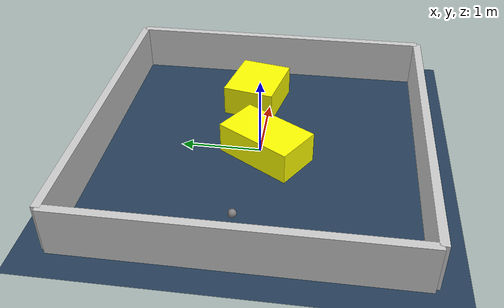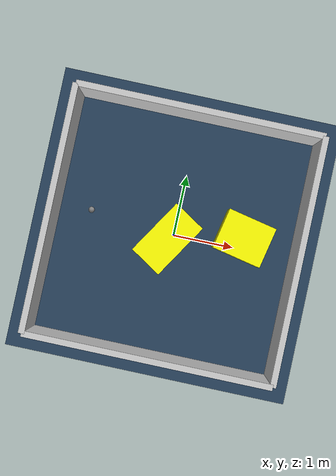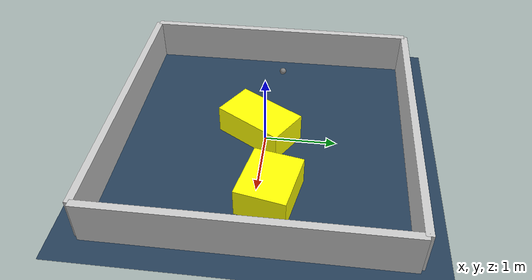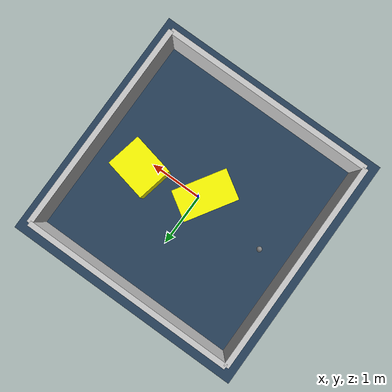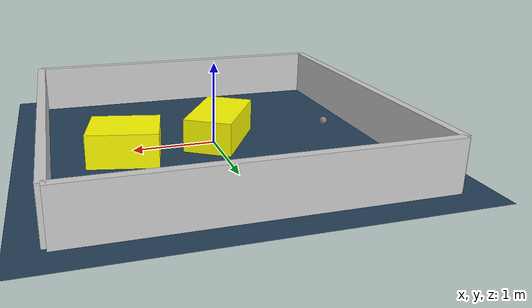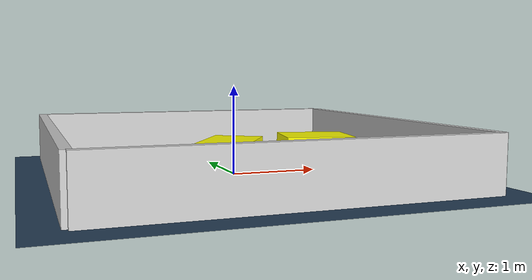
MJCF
<?xml version="1.0" ?>
<mujoco model="generated_environment">
  <option timestep="0.01" integrator="RK4" cone="elliptic"/>
  <default>
    <geom density="1"/>
  </default>
  <asset>
    <texture builtin="gradient" height="3072" rgb1="0.3 0.5 0.7" rgb2="0 0 0" type="skybox" width="512"/>
    <texture builtin="checker" height="300" mark="edge" markrgb="0.8 0.8 0.8" name="groundplane" rgb1="0.2 0.3 0.4" rgb2="0.1 0.2 0.3" type="2d" width="300"/>
    <material name="groundplane" reflectance="0.2" texrepeat="5 5" texture="groundplane" texuniform="true"/>
    <material name="robot" rgba="0.0 1.0 0.0 1"/>
  </asset>
  <worldbody>
    <light dir="0 0 -1" directional="true" pos="0 0 1.5"/>
    <geom condim="4" friction="1.0 0.005 0.001" material="groundplane" name="floor" size="0 0 0.05" type="plane"/>
    <body name="walls">
      <geom name="wall_1" condim="4" pos="-2.0 0.0 0.3" rgba="0.800000011920929 0.800000011920929 0.800000011920929 1.0" size="0.05 2.0 0.3" type="box"/>
      <geom name="wall_2" condim="4" pos="2.0 0.0 0.3" rgba="0.800000011920929 0.800000011920929 0.800000011920929 1.0" size="0.05 2.0 0.3" type="box"/>
      <geom name="wall_3" condim="4" pos="0.0 -2.0 0.3" rgba="0.800000011920929 0.800000011920929 0.800000011920929 1.0" size="2.0 0.05 0.3" type="box"/>
      <geom name="wall_4" condim="4" pos="0.0 2.0 0.3" rgba="0.800000011920929 0.800000011920929 0.800000011920929 1.0" size="2.0 0.05 0.3" type="box"/>
    </body>
    <body name="robot">
      <joint name="joint_x" type="slide" pos="0 0 0" axis="1 0 0"/>
      <joint name="joint_y" type="slide" pos="0 0 0" axis="0 1 0"/>
      <geom name="robot" type="sphere" pos="-1.4022592484781018 0.11908520778796694 0.2" size="0.05" mass="5." friction="1.0 0.005 0.0001" condim="4"/>
      <site name="sensor_ball"/>
    </body>
    <body name="obstacle_1_movable">
      <geom name="obstacle_1_movable" condim="4" pos="-0.087685547343056 -0.0858372296414871 0.2" euler="0 0 327.95635818961546" friction="1.0 0.005 0.001" rgba="1 1 0 1" size="0.2901256224761515 0.5100761928577715 0.2" type="box" mass="0.1"/>
      <joint type="free"/>
    </body>
    <body name="obstacle_2_movable">
      <geom name="obstacle_2_movable" condim="4" pos="1.1130897086935145 0.18613257925157223 0.2" euler="0 0 78.14065111181503" friction="1.0 0.005 0.001" rgba="1 1 0 1" size="0.33766840568509243 0.40573337660153996 0.2" type="box" mass="0.1"/>
      <joint type="free"/>
    </body>
  </worldbody>
  <actuator>
    <motor name="actuator_x" joint="joint_x" gear="1" ctrlrange="-1 1"/>
    <motor name="actuator_y" joint="joint_y" gear="1" ctrlrange="-1 1"/>
  </actuator>
</mujoco>
